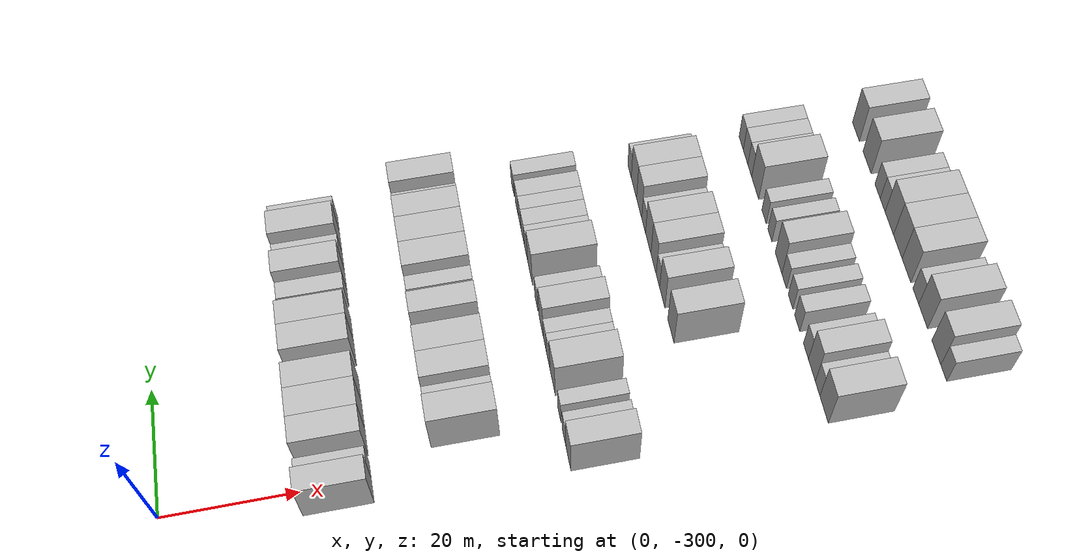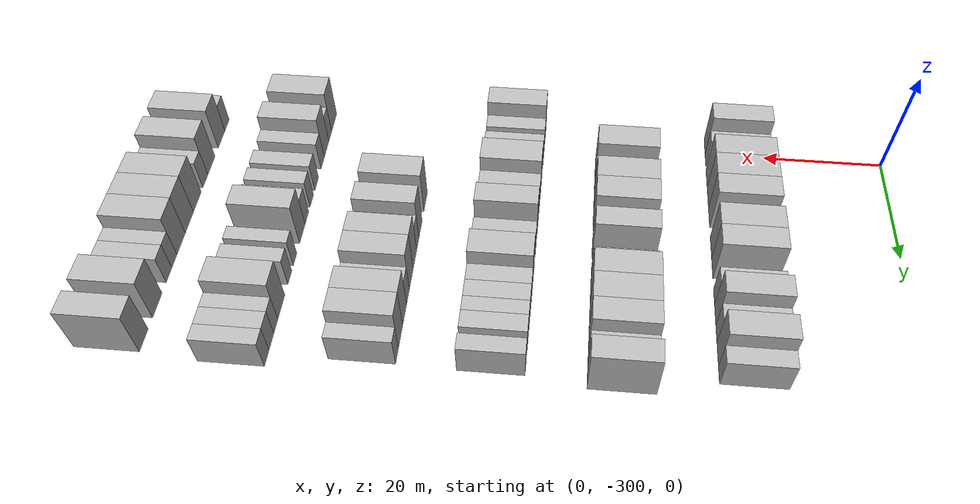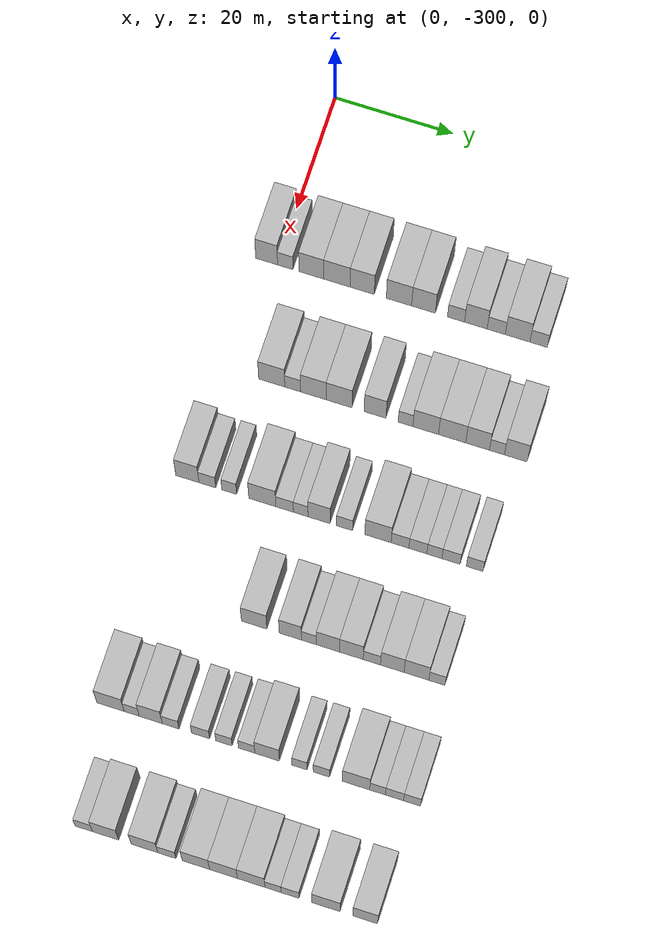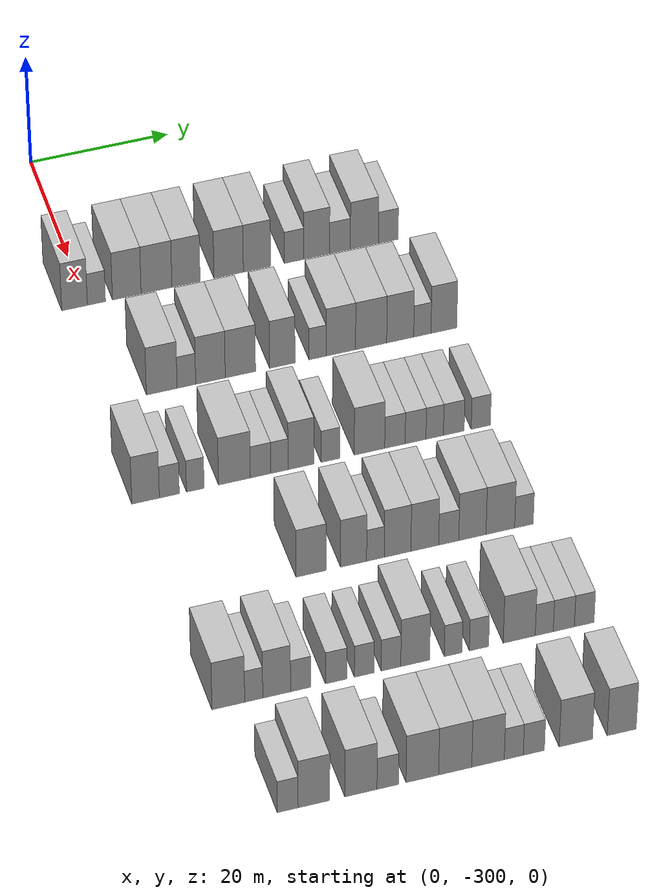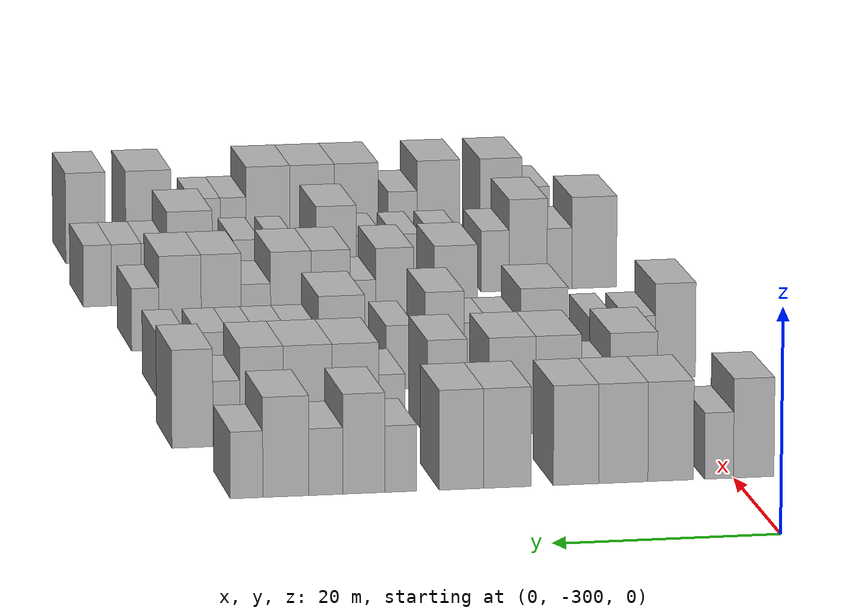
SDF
<sdf version="1.6">
 <world name="default">
  <model name="building_15">
   <static>1</static>
   <pose>25.0000 -301.7940 0 0.000000 0.000000 0.000000</pose>
   <link name="link">
    <pose>0 0 4.50 0 0 0</pose>
    <collision name="collision"><geometry><box><size>10.0000 3.6529 9.0000</size></box></geometry></collision>
    <visual name="visual">
     <cast_shadows>0</cast_shadows>
     <geometry><box><size>10.0000 3.6529 9.0000</size></box></geometry>
     <material>
      <script>
       <uri>model://HANNAS_wall/materials/scripts</uri>
       <uri>model://HANNAS_wall/materials/textures</uri>
       <name>vrc/HANNAS_wall</name>
      </script>
     </material>
    </visual>
   </link>
  </model>
  <model name="building_16">
   <static>1</static>
   <pose>25.0000 -298.6746 0 0.000000 0.000000 0.000000</pose>
   <link name="link">
    <pose>0 0 3.00 0 0 0</pose>
    <collision name="collision"><geometry><box><size>10.0000 2.5859 6.0000</size></box></geometry></collision>
    <visual name="visual">
     <cast_shadows>0</cast_shadows>
     <geometry><box><size>10.0000 2.5859 6.0000</size></box></geometry>
     <material>
      <script>
       <uri>model://HANNAS_wall/materials/scripts</uri>
       <uri>model://HANNAS_wall/materials/textures</uri>
       <name>vrc/HANNAS_wall</name>
      </script>
     </material>
    </visual>
   </link>
  </model>
  <model name="building_17">
   <static>1</static>
   <pose>25.0000 -294.3288 0 0.000000 0.000000 0.000000</pose>
   <link name="link">
    <pose>0 0 4.50 0 0 0</pose>
    <collision name="collision"><geometry><box><size>10.0000 4.1056 9.0000</size></box></geometry></collision>
    <visual name="visual">
     <cast_shadows>0</cast_shadows>
     <geometry><box><size>10.0000 4.1056 9.0000</size></box></geometry>
     <material>
      <script>
       <uri>model://HANNAS_wall/materials/scripts</uri>
       <uri>model://HANNAS_wall/materials/textures</uri>
       <name>vrc/HANNAS_wall</name>
      </script>
     </material>
    </visual>
   </link>
  </model>
  <model name="building_18">
   <static>1</static>
   <pose>25.0000 -290.0642 0 0.000000 0.000000 0.000000</pose>
   <link name="link">
    <pose>0 0 4.50 0 0 0</pose>
    <collision name="collision"><geometry><box><size>10.0000 4.4236 9.0000</size></box></geometry></collision>
    <visual name="visual">
     <cast_shadows>0</cast_shadows>
     <geometry><box><size>10.0000 4.4236 9.0000</size></box></geometry>
     <material>
      <script>
       <uri>model://HANNAS_wall/materials/scripts</uri>
       <uri>model://HANNAS_wall/materials/textures</uri>
       <name>vrc/HANNAS_wall</name>
      </script>
     </material>
    </visual>
   </link>
  </model>
  <model name="building_19">
   <static>1</static>
   <pose>25.0000 -285.8261 0 0.000000 0.000000 0.000000</pose>
   <link name="link">
    <pose>0 0 4.50 0 0 0</pose>
    <collision name="collision"><geometry><box><size>10.0000 4.0528 9.0000</size></box></geometry></collision>
    <visual name="visual">
     <cast_shadows>0</cast_shadows>
     <geometry><box><size>10.0000 4.0528 9.0000</size></box></geometry>
     <material>
      <script>
       <uri>model://HANNAS_wall/materials/scripts</uri>
       <uri>model://HANNAS_wall/materials/textures</uri>
       <name>vrc/HANNAS_wall</name>
      </script>
     </material>
    </visual>
   </link>
  </model>
  <model name="building_20">
   <static>1</static>
   <pose>25.0000 -279.6856 0 0.000000 0.000000 0.000000</pose>
   <link name="link">
    <pose>0 0 4.50 0 0 0</pose>
    <collision name="collision"><geometry><box><size>10.0000 4.2282 9.0000</size></box></geometry></collision>
    <visual name="visual">
     <cast_shadows>0</cast_shadows>
     <geometry><box><size>10.0000 4.2282 9.0000</size></box></geometry>
     <material>
      <script>
       <uri>model://HANNAS_wall/materials/scripts</uri>
       <uri>model://HANNAS_wall/materials/textures</uri>
       <name>vrc/HANNAS_wall</name>
      </script>
     </material>
    </visual>
   </link>
  </model>
  <model name="building_21">
   <static>1</static>
   <pose>25.0000 -275.5950 0 0.000000 0.000000 0.000000</pose>
   <link name="link">
    <pose>0 0 4.50 0 0 0</pose>
    <collision name="collision"><geometry><box><size>10.0000 3.9529 9.0000</size></box></geometry></collision>
    <visual name="visual">
     <cast_shadows>0</cast_shadows>
     <geometry><box><size>10.0000 3.9529 9.0000</size></box></geometry>
     <material>
      <script>
       <uri>model://HANNAS_wall/materials/scripts</uri>
       <uri>model://HANNAS_wall/materials/textures</uri>
       <name>vrc/HANNAS_wall</name>
      </script>
     </material>
    </visual>
   </link>
  </model>
  <model name="building_22">
   <static>1</static>
   <pose>25.0000 -270.2012 0 0.000000 0.000000 0.000000</pose>
   <link name="link">
    <pose>0 0 3.00 0 0 0</pose>
    <collision name="collision"><geometry><box><size>10.0000 2.8348 6.0000</size></box></geometry></collision>
    <visual name="visual">
     <cast_shadows>0</cast_shadows>
     <geometry><box><size>10.0000 2.8348 6.0000</size></box></geometry>
     <material>
      <script>
       <uri>model://HANNAS_wall/materials/scripts</uri>
       <uri>model://HANNAS_wall/materials/textures</uri>
       <name>vrc/HANNAS_wall</name>
      </script>
     </material>
    </visual>
   </link>
  </model>
  <model name="building_23">
   <static>1</static>
   <pose>25.0000 -266.9087 0 0.000000 0.000000 0.000000</pose>
   <link name="link">
    <pose>0 0 4.50 0 0 0</pose>
    <collision name="collision"><geometry><box><size>10.0000 3.7501 9.0000</size></box></geometry></collision>
    <visual name="visual">
     <cast_shadows>0</cast_shadows>
     <geometry><box><size>10.0000 3.7501 9.0000</size></box></geometry>
     <material>
      <script>
       <uri>model://HANNAS_wall/materials/scripts</uri>
       <uri>model://HANNAS_wall/materials/textures</uri>
       <name>vrc/HANNAS_wall</name>
      </script>
     </material>
    </visual>
   </link>
  </model>
  <model name="building_24">
   <static>1</static>
   <pose>25.0000 -263.5351 0 0.000000 0.000000 0.000000</pose>
   <link name="link">
    <pose>0 0 3.00 0 0 0</pose>
    <collision name="collision"><geometry><box><size>10.0000 2.9970 6.0000</size></box></geometry></collision>
    <visual name="visual">
     <cast_shadows>0</cast_shadows>
     <geometry><box><size>10.0000 2.9970 6.0000</size></box></geometry>
     <material>
      <script>
       <uri>model://HANNAS_wall/materials/scripts</uri>
       <uri>model://HANNAS_wall/materials/textures</uri>
       <name>vrc/HANNAS_wall</name>
      </script>
     </material>
    </visual>
   </link>
  </model>
  <model name="building_25">
   <static>1</static>
   <pose>25.0000 -259.9941 0 0.000000 0.000000 0.000000</pose>
   <link name="link">
    <pose>0 0 4.50 0 0 0</pose>
    <collision name="collision"><geometry><box><size>10.0000 4.0851 9.0000</size></box></geometry></collision>
    <visual name="visual">
     <cast_shadows>0</cast_shadows>
     <geometry><box><size>10.0000 4.0851 9.0000</size></box></geometry>
     <material>
      <script>
       <uri>model://HANNAS_wall/materials/scripts</uri>
       <uri>model://HANNAS_wall/materials/textures</uri>
       <name>vrc/HANNAS_wall</name>
      </script>
     </material>
    </visual>
   </link>
  </model>
  <model name="building_26">
   <static>1</static>
   <pose>25.0000 -256.5122 0 0.000000 0.000000 0.000000</pose>
   <link name="link">
    <pose>0 0 3.00 0 0 0</pose>
    <collision name="collision"><geometry><box><size>10.0000 2.8787 6.0000</size></box></geometry></collision>
    <visual name="visual">
     <cast_shadows>0</cast_shadows>
     <geometry><box><size>10.0000 2.8787 6.0000</size></box></geometry>
     <material>
      <script>
       <uri>model://HANNAS_wall/materials/scripts</uri>
       <uri>model://HANNAS_wall/materials/textures</uri>
       <name>vrc/HANNAS_wall</name>
      </script>
     </material>
    </visual>
   </link>
  </model>
  <model name="building_175">
   <static>1</static>
   <pose>44.0000 -294.6997 0 0.000000 0.000000 0.000000</pose>
   <link name="link">
    <pose>0 0 4.50 0 0 0</pose>
    <collision name="collision"><geometry><box><size>10.0000 4.3302 9.0000</size></box></geometry></collision>
    <visual name="visual">
     <cast_shadows>0</cast_shadows>
     <geometry><box><size>10.0000 4.3302 9.0000</size></box></geometry>
     <material>
      <script>
       <uri>model://HANNAS_wall/materials/scripts</uri>
       <uri>model://HANNAS_wall/materials/textures</uri>
       <name>vrc/HANNAS_wall</name>
      </script>
     </material>
    </visual>
   </link>
  </model>
  <model name="building_176">
   <static>1</static>
   <pose>44.0000 -291.2259 0 0.000000 0.000000 0.000000</pose>
   <link name="link">
    <pose>0 0 3.00 0 0 0</pose>
    <collision name="collision"><geometry><box><size>10.0000 2.6175 6.0000</size></box></geometry></collision>
    <visual name="visual">
     <cast_shadows>0</cast_shadows>
     <geometry><box><size>10.0000 2.6175 6.0000</size></box></geometry>
     <material>
      <script>
       <uri>model://HANNAS_wall/materials/scripts</uri>
       <uri>model://HANNAS_wall/materials/textures</uri>
       <name>vrc/HANNAS_wall</name>
      </script>
     </material>
    </visual>
   </link>
  </model>
  <model name="building_177">
   <static>1</static>
   <pose>44.0000 -287.8184 0 0.000000 0.000000 0.000000</pose>
   <link name="link">
    <pose>0 0 4.50 0 0 0</pose>
    <collision name="collision"><geometry><box><size>10.0000 4.1975 9.0000</size></box></geometry></collision>
    <visual name="visual">
     <cast_shadows>0</cast_shadows>
     <geometry><box><size>10.0000 4.1975 9.0000</size></box></geometry>
     <material>
      <script>
       <uri>model://HANNAS_wall/materials/scripts</uri>
       <uri>model://HANNAS_wall/materials/textures</uri>
       <name>vrc/HANNAS_wall</name>
      </script>
     </material>
    </visual>
   </link>
  </model>
  <model name="building_178">
   <static>1</static>
   <pose>44.0000 -283.5724 0 0.000000 0.000000 0.000000</pose>
   <link name="link">
    <pose>0 0 4.50 0 0 0</pose>
    <collision name="collision"><geometry><box><size>10.0000 4.2944 9.0000</size></box></geometry></collision>
    <visual name="visual">
     <cast_shadows>0</cast_shadows>
     <geometry><box><size>10.0000 4.2944 9.0000</size></box></geometry>
     <material>
      <script>
       <uri>model://HANNAS_wall/materials/scripts</uri>
       <uri>model://HANNAS_wall/materials/textures</uri>
       <name>vrc/HANNAS_wall</name>
      </script>
     </material>
    </visual>
   </link>
  </model>
  <model name="building_179">
   <static>1</static>
   <pose>44.0000 -277.6161 0 0.000000 0.000000 0.000000</pose>
   <link name="link">
    <pose>0 0 4.50 0 0 0</pose>
    <collision name="collision"><geometry><box><size>10.0000 3.6183 9.0000</size></box></geometry></collision>
    <visual name="visual">
     <cast_shadows>0</cast_shadows>
     <geometry><box><size>10.0000 3.6183 9.0000</size></box></geometry>
     <material>
      <script>
       <uri>model://HANNAS_wall/materials/scripts</uri>
       <uri>model://HANNAS_wall/materials/textures</uri>
       <name>vrc/HANNAS_wall</name>
      </script>
     </material>
    </visual>
   </link>
  </model>
  <model name="building_180">
   <static>1</static>
   <pose>44.0000 -272.5917 0 0.000000 0.000000 0.000000</pose>
   <link name="link">
    <pose>0 0 3.00 0 0 0</pose>
    <collision name="collision"><geometry><box><size>10.0000 2.4304 6.0000</size></box></geometry></collision>
    <visual name="visual">
     <cast_shadows>0</cast_shadows>
     <geometry><box><size>10.0000 2.4304 6.0000</size></box></geometry>
     <material>
      <script>
       <uri>model://HANNAS_wall/materials/scripts</uri>
       <uri>model://HANNAS_wall/materials/textures</uri>
       <name>vrc/HANNAS_wall</name>
      </script>
     </material>
    </visual>
   </link>
  </model>
  <model name="building_181">
   <static>1</static>
   <pose>44.0000 -269.2691 0 0.000000 0.000000 0.000000</pose>
   <link name="link">
    <pose>0 0 4.50 0 0 0</pose>
    <collision name="collision"><geometry><box><size>10.0000 4.2148 9.0000</size></box></geometry></collision>
    <visual name="visual">
     <cast_shadows>0</cast_shadows>
     <geometry><box><size>10.0000 4.2148 9.0000</size></box></geometry>
     <material>
      <script>
       <uri>model://HANNAS_wall/materials/scripts</uri>
       <uri>model://HANNAS_wall/materials/textures</uri>
       <name>vrc/HANNAS_wall</name>
      </script>
     </material>
    </visual>
   </link>
  </model>
  <model name="building_182">
   <static>1</static>
   <pose>44.0000 -264.9315 0 0.000000 0.000000 0.000000</pose>
   <link name="link">
    <pose>0 0 4.50 0 0 0</pose>
    <collision name="collision"><geometry><box><size>10.0000 4.4603 9.0000</size></box></geometry></collision>
    <visual name="visual">
     <cast_shadows>0</cast_shadows>
     <geometry><box><size>10.0000 4.4603 9.0000</size></box></geometry>
     <material>
      <script>
       <uri>model://HANNAS_wall/materials/scripts</uri>
       <uri>model://HANNAS_wall/materials/textures</uri>
       <name>vrc/HANNAS_wall</name>
      </script>
     </material>
    </visual>
   </link>
  </model>
  <model name="building_183">
   <static>1</static>
   <pose>44.0000 -260.7561 0 0.000000 0.000000 0.000000</pose>
   <link name="link">
    <pose>0 0 4.50 0 0 0</pose>
    <collision name="collision"><geometry><box><size>10.0000 3.8907 9.0000</size></box></geometry></collision>
    <visual name="visual">
     <cast_shadows>0</cast_shadows>
     <geometry><box><size>10.0000 3.8907 9.0000</size></box></geometry>
     <material>
      <script>
       <uri>model://HANNAS_wall/materials/scripts</uri>
       <uri>model://HANNAS_wall/materials/textures</uri>
       <name>vrc/HANNAS_wall</name>
      </script>
     </material>
    </visual>
   </link>
  </model>
  <model name="building_184">
   <static>1</static>
   <pose>44.0000 -257.5762 0 0.000000 0.000000 0.000000</pose>
   <link name="link">
    <pose>0 0 3.00 0 0 0</pose>
    <collision name="collision"><geometry><box><size>10.0000 2.4690 6.0000</size></box></geometry></collision>
    <visual name="visual">
     <cast_shadows>0</cast_shadows>
     <geometry><box><size>10.0000 2.4690 6.0000</size></box></geometry>
     <material>
      <script>
       <uri>model://HANNAS_wall/materials/scripts</uri>
       <uri>model://HANNAS_wall/materials/textures</uri>
       <name>vrc/HANNAS_wall</name>
      </script>
     </material>
    </visual>
   </link>
  </model>
  <model name="building_185">
   <static>1</static>
   <pose>44.0000 -254.4840 0 0.000000 0.000000 0.000000</pose>
   <link name="link">
    <pose>0 0 4.50 0 0 0</pose>
    <collision name="collision"><geometry><box><size>10.0000 3.7155 9.0000</size></box></geometry></collision>
    <visual name="visual">
     <cast_shadows>0</cast_shadows>
     <geometry><box><size>10.0000 3.7155 9.0000</size></box></geometry>
     <material>
      <script>
       <uri>model://HANNAS_wall/materials/scripts</uri>
       <uri>model://HANNAS_wall/materials/textures</uri>
       <name>vrc/HANNAS_wall</name>
      </script>
     </material>
    </visual>
   </link>
  </model>
  <model name="building_345">
   <static>1</static>
   <pose>63.0000 -302.3345 0 0.000000 0.000000 0.000000</pose>
   <link name="link">
    <pose>0 0 4.50 0 0 0</pose>
    <collision name="collision"><geometry><box><size>10.0000 3.8072 9.0000</size></box></geometry></collision>
    <visual name="visual">
     <cast_shadows>0</cast_shadows>
     <geometry><box><size>10.0000 3.8072 9.0000</size></box></geometry>
     <material>
      <script>
       <uri>model://HANNAS_wall/materials/scripts</uri>
       <uri>model://HANNAS_wall/materials/textures</uri>
       <name>vrc/HANNAS_wall</name>
      </script>
     </material>
    </visual>
   </link>
  </model>
  <model name="building_346">
   <static>1</static>
   <pose>63.0000 -299.0459 0 0.000000 0.000000 0.000000</pose>
   <link name="link">
    <pose>0 0 3.00 0 0 0</pose>
    <collision name="collision"><geometry><box><size>10.0000 2.7700 6.0000</size></box></geometry></collision>
    <visual name="visual">
     <cast_shadows>0</cast_shadows>
     <geometry><box><size>10.0000 2.7700 6.0000</size></box></geometry>
     <material>
      <script>
       <uri>model://HANNAS_wall/materials/scripts</uri>
       <uri>model://HANNAS_wall/materials/textures</uri>
       <name>vrc/HANNAS_wall</name>
      </script>
     </material>
    </visual>
   </link>
  </model>
  <model name="building_347">
   <static>1</static>
   <pose>63.0000 -295.4398 0 0.000000 0.000000 0.000000</pose>
   <link name="link">
    <pose>0 0 3.00 0 0 0</pose>
    <collision name="collision"><geometry><box><size>10.0000 2.4423 6.0000</size></box></geometry></collision>
    <visual name="visual">
     <cast_shadows>0</cast_shadows>
     <geometry><box><size>10.0000 2.4423 6.0000</size></box></geometry>
     <material>
      <script>
       <uri>model://HANNAS_wall/materials/scripts</uri>
       <uri>model://HANNAS_wall/materials/textures</uri>
       <name>vrc/HANNAS_wall</name>
      </script>
     </material>
    </visual>
   </link>
  </model>
  <model name="building_348">
   <static>1</static>
   <pose>63.0000 -290.0000 0 0.000000 0.000000 0.000000</pose>
   <link name="link">
    <pose>0 0 4.50 0 0 0</pose>
    <collision name="collision"><geometry><box><size>10.0000 4.4372 9.0000</size></box></geometry></collision>
    <visual name="visual">
     <cast_shadows>0</cast_shadows>
     <geometry><box><size>10.0000 4.4372 9.0000</size></box></geometry>
     <material>
      <script>
       <uri>model://HANNAS_wall/materials/scripts</uri>
       <uri>model://HANNAS_wall/materials/textures</uri>
       <name>vrc/HANNAS_wall</name>
      </script>
     </material>
    </visual>
   </link>
  </model>
  <model name="building_349">
   <static>1</static>
   <pose>63.0000 -286.3480 0 0.000000 0.000000 0.000000</pose>
   <link name="link">
    <pose>0 0 3.00 0 0 0</pose>
    <collision name="collision"><geometry><box><size>10.0000 2.8669 6.0000</size></box></geometry></collision>
    <visual name="visual">
     <cast_shadows>0</cast_shadows>
     <geometry><box><size>10.0000 2.8669 6.0000</size></box></geometry>
     <material>
      <script>
       <uri>model://HANNAS_wall/materials/scripts</uri>
       <uri>model://HANNAS_wall/materials/textures</uri>
       <name>vrc/HANNAS_wall</name>
      </script>
     </material>
    </visual>
   </link>
  </model>
  <model name="building_350">
   <static>1</static>
   <pose>63.0000 -283.7135 0 0.000000 0.000000 0.000000</pose>
   <link name="link">
    <pose>0 0 3.00 0 0 0</pose>
    <collision name="collision"><geometry><box><size>10.0000 2.4020 6.0000</size></box></geometry></collision>
    <visual name="visual">
     <cast_shadows>0</cast_shadows>
     <geometry><box><size>10.0000 2.4020 6.0000</size></box></geometry>
     <material>
      <script>
       <uri>model://HANNAS_wall/materials/scripts</uri>
       <uri>model://HANNAS_wall/materials/textures</uri>
       <name>vrc/HANNAS_wall</name>
      </script>
     </material>
    </visual>
   </link>
  </model>
  <model name="building_351">
   <static>1</static>
   <pose>63.0000 -280.6971 0 0.000000 0.000000 0.000000</pose>
   <link name="link">
    <pose>0 0 4.50 0 0 0</pose>
    <collision name="collision"><geometry><box><size>10.0000 3.6308 9.0000</size></box></geometry></collision>
    <visual name="visual">
     <cast_shadows>0</cast_shadows>
     <geometry><box><size>10.0000 3.6308 9.0000</size></box></geometry>
     <material>
      <script>
       <uri>model://HANNAS_wall/materials/scripts</uri>
       <uri>model://HANNAS_wall/materials/textures</uri>
       <name>vrc/HANNAS_wall</name>
      </script>
     </material>
    </visual>
   </link>
  </model>
  <model name="building_352">
   <static>1</static>
   <pose>63.0000 -276.5550 0 0.000000 0.000000 0.000000</pose>
   <link name="link">
    <pose>0 0 3.00 0 0 0</pose>
    <collision name="collision"><geometry><box><size>10.0000 2.6535 6.0000</size></box></geometry></collision>
    <visual name="visual">
     <cast_shadows>0</cast_shadows>
     <geometry><box><size>10.0000 2.6535 6.0000</size></box></geometry>
     <material>
      <script>
       <uri>model://HANNAS_wall/materials/scripts</uri>
       <uri>model://HANNAS_wall/materials/textures</uri>
       <name>vrc/HANNAS_wall</name>
      </script>
     </material>
    </visual>
   </link>
  </model>
  <model name="building_353">
   <static>1</static>
   <pose>63.0000 -271.0815 0 0.000000 0.000000 0.000000</pose>
   <link name="link">
    <pose>0 0 4.50 0 0 0</pose>
    <collision name="collision"><geometry><box><size>10.0000 4.2936 9.0000</size></box></geometry></collision>
    <visual name="visual">
     <cast_shadows>0</cast_shadows>
     <geometry><box><size>10.0000 4.2936 9.0000</size></box></geometry>
     <material>
      <script>
       <uri>model://HANNAS_wall/materials/scripts</uri>
       <uri>model://HANNAS_wall/materials/textures</uri>
       <name>vrc/HANNAS_wall</name>
      </script>
     </material>
    </visual>
   </link>
  </model>
  <model name="building_354">
   <static>1</static>
   <pose>63.0000 -267.4930 0 0.000000 0.000000 0.000000</pose>
   <link name="link">
    <pose>0 0 3.00 0 0 0</pose>
    <collision name="collision"><geometry><box><size>10.0000 2.8834 6.0000</size></box></geometry></collision>
    <visual name="visual">
     <cast_shadows>0</cast_shadows>
     <geometry><box><size>10.0000 2.8834 6.0000</size></box></geometry>
     <material>
      <script>
       <uri>model://HANNAS_wall/materials/scripts</uri>
       <uri>model://HANNAS_wall/materials/textures</uri>
       <name>vrc/HANNAS_wall</name>
      </script>
     </material>
    </visual>
   </link>
  </model>
  <model name="building_355">
   <static>1</static>
   <pose>63.0000 -264.5808 0 0.000000 0.000000 0.000000</pose>
   <link name="link">
    <pose>0 0 3.00 0 0 0</pose>
    <collision name="collision"><geometry><box><size>10.0000 2.9409 6.0000</size></box></geometry></collision>
    <visual name="visual">
     <cast_shadows>0</cast_shadows>
     <geometry><box><size>10.0000 2.9409 6.0000</size></box></geometry>
     <material>
      <script>
       <uri>model://HANNAS_wall/materials/scripts</uri>
       <uri>model://HANNAS_wall/materials/textures</uri>
       <name>vrc/HANNAS_wall</name>
      </script>
     </material>
    </visual>
   </link>
  </model>
  <model name="building_356">
   <static>1</static>
   <pose>63.0000 -261.8820 0 0.000000 0.000000 0.000000</pose>
   <link name="link">
    <pose>0 0 3.00 0 0 0</pose>
    <collision name="collision"><geometry><box><size>10.0000 2.4566 6.0000</size></box></geometry></collision>
    <visual name="visual">
     <cast_shadows>0</cast_shadows>
     <geometry><box><size>10.0000 2.4566 6.0000</size></box></geometry>
     <material>
      <script>
       <uri>model://HANNAS_wall/materials/scripts</uri>
       <uri>model://HANNAS_wall/materials/textures</uri>
       <name>vrc/HANNAS_wall</name>
      </script>
     </material>
    </visual>
   </link>
  </model>
  <model name="building_357">
   <static>1</static>
   <pose>63.0000 -259.1807 0 0.000000 0.000000 0.000000</pose>
   <link name="link">
    <pose>0 0 3.00 0 0 0</pose>
    <collision name="collision"><geometry><box><size>10.0000 2.9461 6.0000</size></box></geometry></collision>
    <visual name="visual">
     <cast_shadows>0</cast_shadows>
     <geometry><box><size>10.0000 2.9461 6.0000</size></box></geometry>
     <material>
      <script>
       <uri>model://HANNAS_wall/materials/scripts</uri>
       <uri>model://HANNAS_wall/materials/textures</uri>
       <name>vrc/HANNAS_wall</name>
      </script>
     </material>
    </visual>
   </link>
  </model>
  <model name="building_358">
   <static>1</static>
   <pose>63.0000 -255.3499 0 0.000000 0.000000 0.000000</pose>
   <link name="link">
    <pose>0 0 3.00 0 0 0</pose>
    <collision name="collision"><geometry><box><size>10.0000 2.7155 6.0000</size></box></geometry></collision>
    <visual name="visual">
     <cast_shadows>0</cast_shadows>
     <geometry><box><size>10.0000 2.7155 6.0000</size></box></geometry>
     <material>
      <script>
       <uri>model://HANNAS_wall/materials/scripts</uri>
       <uri>model://HANNAS_wall/materials/textures</uri>
       <name>vrc/HANNAS_wall</name>
      </script>
     </material>
    </visual>
   </link>
  </model>
  <model name="building_533">
   <static>1</static>
   <pose>82.0000 -285.0635 0 0.000000 0.000000 0.000000</pose>
   <link name="link">
    <pose>0 0 4.50 0 0 0</pose>
    <collision name="collision"><geometry><box><size>10.0000 4.1279 9.0000</size></box></geometry></collision>
    <visual name="visual">
     <cast_shadows>0</cast_shadows>
     <geometry><box><size>10.0000 4.1279 9.0000</size></box></geometry>
     <material>
      <script>
       <uri>model://HANNAS_wall/materials/scripts</uri>
       <uri>model://HANNAS_wall/materials/textures</uri>
       <name>vrc/HANNAS_wall</name>
      </script>
     </material>
    </visual>
   </link>
  </model>
  <model name="building_534">
   <static>1</static>
   <pose>82.0000 -279.1985 0 0.000000 0.000000 0.000000</pose>
   <link name="link">
    <pose>0 0 4.50 0 0 0</pose>
    <collision name="collision"><geometry><box><size>10.0000 3.6021 9.0000</size></box></geometry></collision>
    <visual name="visual">
     <cast_shadows>0</cast_shadows>
     <geometry><box><size>10.0000 3.6021 9.0000</size></box></geometry>
     <material>
      <script>
       <uri>model://HANNAS_wall/materials/scripts</uri>
       <uri>model://HANNAS_wall/materials/textures</uri>
       <name>vrc/HANNAS_wall</name>
      </script>
     </material>
    </visual>
   </link>
  </model>
  <model name="building_535">
   <static>1</static>
   <pose>82.0000 -276.1820 0 0.000000 0.000000 0.000000</pose>
   <link name="link">
    <pose>0 0 3.00 0 0 0</pose>
    <collision name="collision"><geometry><box><size>10.0000 2.4308 6.0000</size></box></geometry></collision>
    <visual name="visual">
     <cast_shadows>0</cast_shadows>
     <geometry><box><size>10.0000 2.4308 6.0000</size></box></geometry>
     <material>
      <script>
       <uri>model://HANNAS_wall/materials/scripts</uri>
       <uri>model://HANNAS_wall/materials/textures</uri>
       <name>vrc/HANNAS_wall</name>
      </script>
     </material>
    </visual>
   </link>
  </model>
  <model name="building_536">
   <static>1</static>
   <pose>82.0000 -273.1202 0 0.000000 0.000000 0.000000</pose>
   <link name="link">
    <pose>0 0 4.50 0 0 0</pose>
    <collision name="collision"><geometry><box><size>10.0000 3.6928 9.0000</size></box></geometry></collision>
    <visual name="visual">
     <cast_shadows>0</cast_shadows>
     <geometry><box><size>10.0000 3.6928 9.0000</size></box></geometry>
     <material>
      <script>
       <uri>model://HANNAS_wall/materials/scripts</uri>
       <uri>model://HANNAS_wall/materials/textures</uri>
       <name>vrc/HANNAS_wall</name>
      </script>
     </material>
    </visual>
   </link>
  </model>
  <model name="building_537">
   <static>1</static>
   <pose>82.0000 -269.3476 0 0.000000 0.000000 0.000000</pose>
   <link name="link">
    <pose>0 0 4.50 0 0 0</pose>
    <collision name="collision"><geometry><box><size>10.0000 3.8524 9.0000</size></box></geometry></collision>
    <visual name="visual">
     <cast_shadows>0</cast_shadows>
     <geometry><box><size>10.0000 3.8524 9.0000</size></box></geometry>
     <material>
      <script>
       <uri>model://HANNAS_wall/materials/scripts</uri>
       <uri>model://HANNAS_wall/materials/textures</uri>
       <name>vrc/HANNAS_wall</name>
      </script>
     </material>
    </visual>
   </link>
  </model>
  <model name="building_538">
   <static>1</static>
   <pose>82.0000 -266.0254 0 0.000000 0.000000 0.000000</pose>
   <link name="link">
    <pose>0 0 3.00 0 0 0</pose>
    <collision name="collision"><geometry><box><size>10.0000 2.7921 6.0000</size></box></geometry></collision>
    <visual name="visual">
     <cast_shadows>0</cast_shadows>
     <geometry><box><size>10.0000 2.7921 6.0000</size></box></geometry>
     <material>
      <script>
       <uri>model://HANNAS_wall/materials/scripts</uri>
       <uri>model://HANNAS_wall/materials/textures</uri>
       <name>vrc/HANNAS_wall</name>
      </script>
     </material>
    </visual>
   </link>
  </model>
  <model name="building_539">
   <static>1</static>
   <pose>82.0000 -262.7329 0 0.000000 0.000000 0.000000</pose>
   <link name="link">
    <pose>0 0 4.50 0 0 0</pose>
    <collision name="collision"><geometry><box><size>10.0000 3.7928 9.0000</size></box></geometry></collision>
    <visual name="visual">
     <cast_shadows>0</cast_shadows>
     <geometry><box><size>10.0000 3.7928 9.0000</size></box></geometry>
     <material>
      <script>
       <uri>model://HANNAS_wall/materials/scripts</uri>
       <uri>model://HANNAS_wall/materials/textures</uri>
       <name>vrc/HANNAS_wall</name>
      </script>
     </material>
    </visual>
   </link>
  </model>
  <model name="building_540">
   <static>1</static>
   <pose>82.0000 -258.8356 0 0.000000 0.000000 0.000000</pose>
   <link name="link">
    <pose>0 0 4.50 0 0 0</pose>
    <collision name="collision"><geometry><box><size>10.0000 4.0018 9.0000</size></box></geometry></collision>
    <visual name="visual">
     <cast_shadows>0</cast_shadows>
     <geometry><box><size>10.0000 4.0018 9.0000</size></box></geometry>
     <material>
      <script>
       <uri>model://HANNAS_wall/materials/scripts</uri>
       <uri>model://HANNAS_wall/materials/textures</uri>
       <name>vrc/HANNAS_wall</name>
      </script>
     </material>
    </visual>
   </link>
  </model>
  <model name="building_541">
   <static>1</static>
   <pose>82.0000 -255.5364 0 0.000000 0.000000 0.000000</pose>
   <link name="link">
    <pose>0 0 3.00 0 0 0</pose>
    <collision name="collision"><geometry><box><size>10.0000 2.5967 6.0000</size></box></geometry></collision>
    <visual name="visual">
     <cast_shadows>0</cast_shadows>
     <geometry><box><size>10.0000 2.5967 6.0000</size></box></geometry>
     <material>
      <script>
       <uri>model://HANNAS_wall/materials/scripts</uri>
       <uri>model://HANNAS_wall/materials/textures</uri>
       <name>vrc/HANNAS_wall</name>
      </script>
     </material>
    </visual>
   </link>
  </model>
  <model name="building_713">
   <static>1</static>
   <pose>101.0000 -301.9628 0 0.000000 0.000000 0.000000</pose>
   <link name="link">
    <pose>0 0 4.50 0 0 0</pose>
    <collision name="collision"><geometry><box><size>10.0000 4.3993 9.0000</size></box></geometry></collision>
    <visual name="visual">
     <cast_shadows>0</cast_shadows>
     <geometry><box><size>10.0000 4.3993 9.0000</size></box></geometry>
     <material>
      <script>
       <uri>model://HANNAS_wall/materials/scripts</uri>
       <uri>model://HANNAS_wall/materials/textures</uri>
       <name>vrc/HANNAS_wall</name>
      </script>
     </material>
    </visual>
   </link>
  </model>
  <model name="building_714">
   <static>1</static>
   <pose>101.0000 -298.5491 0 0.000000 0.000000 0.000000</pose>
   <link name="link">
    <pose>0 0 3.00 0 0 0</pose>
    <collision name="collision"><geometry><box><size>10.0000 2.4281 6.0000</size></box></geometry></collision>
    <visual name="visual">
     <cast_shadows>0</cast_shadows>
     <geometry><box><size>10.0000 2.4281 6.0000</size></box></geometry>
     <material>
      <script>
       <uri>model://HANNAS_wall/materials/scripts</uri>
       <uri>model://HANNAS_wall/materials/textures</uri>
       <name>vrc/HANNAS_wall</name>
      </script>
     </material>
    </visual>
   </link>
  </model>
  <model name="building_715">
   <static>1</static>
   <pose>101.0000 -295.4631 0 0.000000 0.000000 0.000000</pose>
   <link name="link">
    <pose>0 0 4.50 0 0 0</pose>
    <collision name="collision"><geometry><box><size>10.0000 3.7438 9.0000</size></box></geometry></collision>
    <visual name="visual">
     <cast_shadows>0</cast_shadows>
     <geometry><box><size>10.0000 3.7438 9.0000</size></box></geometry>
     <material>
      <script>
       <uri>model://HANNAS_wall/materials/scripts</uri>
       <uri>model://HANNAS_wall/materials/textures</uri>
       <name>vrc/HANNAS_wall</name>
      </script>
     </material>
    </visual>
   </link>
  </model>
  <model name="building_716">
   <static>1</static>
   <pose>101.0000 -292.2394 0 0.000000 0.000000 0.000000</pose>
   <link name="link">
    <pose>0 0 3.00 0 0 0</pose>
    <collision name="collision"><geometry><box><size>10.0000 2.7036 6.0000</size></box></geometry></collision>
    <visual name="visual">
     <cast_shadows>0</cast_shadows>
     <geometry><box><size>10.0000 2.7036 6.0000</size></box></geometry>
     <material>
      <script>
       <uri>model://HANNAS_wall/materials/scripts</uri>
       <uri>model://HANNAS_wall/materials/textures</uri>
       <name>vrc/HANNAS_wall</name>
      </script>
     </material>
    </visual>
   </link>
  </model>
  <model name="building_717">
   <static>1</static>
   <pose>101.0000 -287.4258 0 0.000000 0.000000 0.000000</pose>
   <link name="link">
    <pose>0 0 3.00 0 0 0</pose>
    <collision name="collision"><geometry><box><size>10.0000 2.9236 6.0000</size></box></geometry></collision>
    <visual name="visual">
     <cast_shadows>0</cast_shadows>
     <geometry><box><size>10.0000 2.9236 6.0000</size></box></geometry>
     <material>
      <script>
       <uri>model://HANNAS_wall/materials/scripts</uri>
       <uri>model://HANNAS_wall/materials/textures</uri>
       <name>vrc/HANNAS_wall</name>
      </script>
     </material>
    </visual>
   </link>
  </model>
  <model name="building_718">
   <static>1</static>
   <pose>101.0000 -283.6432 0 0.000000 0.000000 0.000000</pose>
   <link name="link">
    <pose>0 0 3.00 0 0 0</pose>
    <collision name="collision"><geometry><box><size>10.0000 2.6416 6.0000</size></box></geometry></collision>
    <visual name="visual">
     <cast_shadows>0</cast_shadows>
     <geometry><box><size>10.0000 2.6416 6.0000</size></box></geometry>
     <material>
      <script>
       <uri>model://HANNAS_wall/materials/scripts</uri>
       <uri>model://HANNAS_wall/materials/textures</uri>
       <name>vrc/HANNAS_wall</name>
      </script>
     </material>
    </visual>
   </link>
  </model>
  <model name="building_719">
   <static>1</static>
   <pose>101.0000 -279.9968 0 0.000000 0.000000 0.000000</pose>
   <link name="link">
    <pose>0 0 3.00 0 0 0</pose>
    <collision name="collision"><geometry><box><size>10.0000 2.6511 6.0000</size></box></geometry></collision>
    <visual name="visual">
     <cast_shadows>0</cast_shadows>
     <geometry><box><size>10.0000 2.6511 6.0000</size></box></geometry>
     <material>
      <script>
       <uri>model://HANNAS_wall/materials/scripts</uri>
       <uri>model://HANNAS_wall/materials/textures</uri>
       <name>vrc/HANNAS_wall</name>
      </script>
     </material>
    </visual>
   </link>
  </model>
  <model name="building_720">
   <static>1</static>
   <pose>101.0000 -276.7064 0 0.000000 0.000000 0.000000</pose>
   <link name="link">
    <pose>0 0 4.50 0 0 0</pose>
    <collision name="collision"><geometry><box><size>10.0000 3.9298 9.0000</size></box></geometry></collision>
    <visual name="visual">
     <cast_shadows>0</cast_shadows>
     <geometry><box><size>10.0000 3.9298 9.0000</size></box></geometry>
     <material>
      <script>
       <uri>model://HANNAS_wall/materials/scripts</uri>
       <uri>model://HANNAS_wall/materials/textures</uri>
       <name>vrc/HANNAS_wall</name>
      </script>
     </material>
    </visual>
   </link>
  </model>
  <model name="building_721">
   <static>1</static>
   <pose>101.0000 -271.5287 0 0.000000 0.000000 0.000000</pose>
   <link name="link">
    <pose>0 0 3.00 0 0 0</pose>
    <collision name="collision"><geometry><box><size>10.0000 2.4256 6.0000</size></box></geometry></collision>
    <visual name="visual">
     <cast_shadows>0</cast_shadows>
     <geometry><box><size>10.0000 2.4256 6.0000</size></box></geometry>
     <material>
      <script>
       <uri>model://HANNAS_wall/materials/scripts</uri>
       <uri>model://HANNAS_wall/materials/textures</uri>
       <name>vrc/HANNAS_wall</name>
      </script>
     </material>
    </visual>
   </link>
  </model>
  <model name="building_722">
   <static>1</static>
   <pose>101.0000 -268.0012 0 0.000000 0.000000 0.000000</pose>
   <link name="link">
    <pose>0 0 3.00 0 0 0</pose>
    <collision name="collision"><geometry><box><size>10.0000 2.6292 6.0000</size></box></geometry></collision>
    <visual name="visual">
     <cast_shadows>0</cast_shadows>
     <geometry><box><size>10.0000 2.6292 6.0000</size></box></geometry>
     <material>
      <script>
       <uri>model://HANNAS_wall/materials/scripts</uri>
       <uri>model://HANNAS_wall/materials/textures</uri>
       <name>vrc/HANNAS_wall</name>
      </script>
     </material>
    </visual>
   </link>
  </model>
  <model name="building_723">
   <static>1</static>
   <pose>101.0000 -262.4924 0 0.000000 0.000000 0.000000</pose>
   <link name="link">
    <pose>0 0 4.50 0 0 0</pose>
    <collision name="collision"><geometry><box><size>10.0000 4.3884 9.0000</size></box></geometry></collision>
    <visual name="visual">
     <cast_shadows>0</cast_shadows>
     <geometry><box><size>10.0000 4.3884 9.0000</size></box></geometry>
     <material>
      <script>
       <uri>model://HANNAS_wall/materials/scripts</uri>
       <uri>model://HANNAS_wall/materials/textures</uri>
       <name>vrc/HANNAS_wall</name>
      </script>
     </material>
    </visual>
   </link>
  </model>
  <model name="building_724">
   <static>1</static>
   <pose>101.0000 -259.0566 0 0.000000 0.000000 0.000000</pose>
   <link name="link">
    <pose>0 0 3.00 0 0 0</pose>
    <collision name="collision"><geometry><box><size>10.0000 2.4832 6.0000</size></box></geometry></collision>
    <visual name="visual">
     <cast_shadows>0</cast_shadows>
     <geometry><box><size>10.0000 2.4832 6.0000</size></box></geometry>
     <material>
      <script>
       <uri>model://HANNAS_wall/materials/scripts</uri>
       <uri>model://HANNAS_wall/materials/textures</uri>
       <name>vrc/HANNAS_wall</name>
      </script>
     </material>
    </visual>
   </link>
  </model>
  <model name="building_725">
   <static>1</static>
   <pose>101.0000 -256.3602 0 0.000000 0.000000 0.000000</pose>
   <link name="link">
    <pose>0 0 3.00 0 0 0</pose>
    <collision name="collision"><geometry><box><size>10.0000 2.9096 6.0000</size></box></geometry></collision>
    <visual name="visual">
     <cast_shadows>0</cast_shadows>
     <geometry><box><size>10.0000 2.9096 6.0000</size></box></geometry>
     <material>
      <script>
       <uri>model://HANNAS_wall/materials/scripts</uri>
       <uri>model://HANNAS_wall/materials/textures</uri>
       <name>vrc/HANNAS_wall</name>
      </script>
     </material>
    </visual>
   </link>
  </model>
  <model name="building_726">
   <static>1</static>
   <pose>101.0000 -253.5560 0 0.000000 0.000000 0.000000</pose>
   <link name="link">
    <pose>0 0 3.00 0 0 0</pose>
    <collision name="collision"><geometry><box><size>10.0000 2.6988 6.0000</size></box></geometry></collision>
    <visual name="visual">
     <cast_shadows>0</cast_shadows>
     <geometry><box><size>10.0000 2.6988 6.0000</size></box></geometry>
     <material>
      <script>
       <uri>model://HANNAS_wall/materials/scripts</uri>
       <uri>model://HANNAS_wall/materials/textures</uri>
       <name>vrc/HANNAS_wall</name>
      </script>
     </material>
    </visual>
   </link>
  </model>
  <model name="building_896">
   <static>1</static>
   <pose>120.0000 -299.6784 0 0.000000 0.000000 0.000000</pose>
   <link name="link">
    <pose>0 0 3.00 0 0 0</pose>
    <collision name="collision"><geometry><box><size>10.0000 2.7614 6.0000</size></box></geometry></collision>
    <visual name="visual">
     <cast_shadows>0</cast_shadows>
     <geometry><box><size>10.0000 2.7614 6.0000</size></box></geometry>
     <material>
      <script>
       <uri>model://HANNAS_wall/materials/scripts</uri>
       <uri>model://HANNAS_wall/materials/textures</uri>
       <name>vrc/HANNAS_wall</name>
      </script>
     </material>
    </visual>
   </link>
  </model>
  <model name="building_897">
   <static>1</static>
   <pose>120.0000 -296.2028 0 0.000000 0.000000 0.000000</pose>
   <link name="link">
    <pose>0 0 4.50 0 0 0</pose>
    <collision name="collision"><geometry><box><size>10.0000 4.1899 9.0000</size></box></geometry></collision>
    <visual name="visual">
     <cast_shadows>0</cast_shadows>
     <geometry><box><size>10.0000 4.1899 9.0000</size></box></geometry>
     <material>
      <script>
       <uri>model://HANNAS_wall/materials/scripts</uri>
       <uri>model://HANNAS_wall/materials/textures</uri>
       <name>vrc/HANNAS_wall</name>
      </script>
     </material>
    </visual>
   </link>
  </model>
  <model name="building_898">
   <static>1</static>
   <pose>120.0000 -289.9722 0 0.000000 0.000000 0.000000</pose>
   <link name="link">
    <pose>0 0 4.50 0 0 0</pose>
    <collision name="collision"><geometry><box><size>10.0000 4.2713 9.0000</size></box></geometry></collision>
    <visual name="visual">
     <cast_shadows>0</cast_shadows>
     <geometry><box><size>10.0000 4.2713 9.0000</size></box></geometry>
     <material>
      <script>
       <uri>model://HANNAS_wall/materials/scripts</uri>
       <uri>model://HANNAS_wall/materials/textures</uri>
       <name>vrc/HANNAS_wall</name>
      </script>
     </material>
    </visual>
   </link>
  </model>
  <model name="building_899">
   <static>1</static>
   <pose>120.0000 -286.3986 0 0.000000 0.000000 0.000000</pose>
   <link name="link">
    <pose>0 0 3.00 0 0 0</pose>
    <collision name="collision"><geometry><box><size>10.0000 2.8758 6.0000</size></box></geometry></collision>
    <visual name="visual">
     <cast_shadows>0</cast_shadows>
     <geometry><box><size>10.0000 2.8758 6.0000</size></box></geometry>
     <material>
      <script>
       <uri>model://HANNAS_wall/materials/scripts</uri>
       <uri>model://HANNAS_wall/materials/textures</uri>
       <name>vrc/HANNAS_wall</name>
      </script>
     </material>
    </visual>
   </link>
  </model>
  <model name="building_900">
   <static>1</static>
   <pose>120.0000 -281.7883 0 0.000000 0.000000 0.000000</pose>
   <link name="link">
    <pose>0 0 4.50 0 0 0</pose>
    <collision name="collision"><geometry><box><size>10.0000 4.3447 9.0000</size></box></geometry></collision>
    <visual name="visual">
     <cast_shadows>0</cast_shadows>
     <geometry><box><size>10.0000 4.3447 9.0000</size></box></geometry>
     <material>
      <script>
       <uri>model://HANNAS_wall/materials/scripts</uri>
       <uri>model://HANNAS_wall/materials/textures</uri>
       <name>vrc/HANNAS_wall</name>
      </script>
     </material>
    </visual>
   </link>
  </model>
  <model name="building_901">
   <static>1</static>
   <pose>120.0000 -277.3988 0 0.000000 0.000000 0.000000</pose>
   <link name="link">
    <pose>0 0 4.50 0 0 0</pose>
    <collision name="collision"><geometry><box><size>10.0000 4.4344 9.0000</size></box></geometry></collision>
    <visual name="visual">
     <cast_shadows>0</cast_shadows>
     <geometry><box><size>10.0000 4.4344 9.0000</size></box></geometry>
     <material>
      <script>
       <uri>model://HANNAS_wall/materials/scripts</uri>
       <uri>model://HANNAS_wall/materials/textures</uri>
       <name>vrc/HANNAS_wall</name>
      </script>
     </material>
    </visual>
   </link>
  </model>
  <model name="building_902">
   <static>1</static>
   <pose>120.0000 -273.0000 0 0.000000 0.000000 0.000000</pose>
   <link name="link">
    <pose>0 0 4.50 0 0 0</pose>
    <collision name="collision"><geometry><box><size>10.0000 4.3632 9.0000</size></box></geometry></collision>
    <visual name="visual">
     <cast_shadows>0</cast_shadows>
     <geometry><box><size>10.0000 4.3632 9.0000</size></box></geometry>
     <material>
      <script>
       <uri>model://HANNAS_wall/materials/scripts</uri>
       <uri>model://HANNAS_wall/materials/textures</uri>
       <name>vrc/HANNAS_wall</name>
      </script>
     </material>
    </visual>
   </link>
  </model>
  <model name="building_903">
   <static>1</static>
   <pose>120.0000 -269.5377 0 0.000000 0.000000 0.000000</pose>
   <link name="link">
    <pose>0 0 3.00 0 0 0</pose>
    <collision name="collision"><geometry><box><size>10.0000 2.5614 6.0000</size></box></geometry></collision>
    <visual name="visual">
     <cast_shadows>0</cast_shadows>
     <geometry><box><size>10.0000 2.5614 6.0000</size></box></geometry>
     <material>
      <script>
       <uri>model://HANNAS_wall/materials/scripts</uri>
       <uri>model://HANNAS_wall/materials/textures</uri>
       <name>vrc/HANNAS_wall</name>
      </script>
     </material>
    </visual>
   </link>
  </model>
  <model name="building_904">
   <static>1</static>
   <pose>120.0000 -266.8332 0 0.000000 0.000000 0.000000</pose>
   <link name="link">
    <pose>0 0 3.00 0 0 0</pose>
    <collision name="collision"><geometry><box><size>10.0000 2.8475 6.0000</size></box></geometry></collision>
    <visual name="visual">
     <cast_shadows>0</cast_shadows>
     <geometry><box><size>10.0000 2.8475 6.0000</size></box></geometry>
     <material>
      <script>
       <uri>model://HANNAS_wall/materials/scripts</uri>
       <uri>model://HANNAS_wall/materials/textures</uri>
       <name>vrc/HANNAS_wall</name>
      </script>
     </material>
    </visual>
   </link>
  </model>
  <model name="building_905">
   <static>1</static>
   <pose>120.0000 -261.1629 0 0.000000 0.000000 0.000000</pose>
   <link name="link">
    <pose>0 0 4.50 0 0 0</pose>
    <collision name="collision"><geometry><box><size>10.0000 4.4931 9.0000</size></box></geometry></collision>
    <visual name="visual">
     <cast_shadows>0</cast_shadows>
     <geometry><box><size>10.0000 4.4931 9.0000</size></box></geometry>
     <material>
      <script>
       <uri>model://HANNAS_wall/materials/scripts</uri>
       <uri>model://HANNAS_wall/materials/textures</uri>
       <name>vrc/HANNAS_wall</name>
      </script>
     </material>
    </visual>
   </link>
  </model>
  <model name="building_906">
   <static>1</static>
   <pose>120.0000 -254.9555 0 0.000000 0.000000 0.000000</pose>
   <link name="link">
    <pose>0 0 4.50 0 0 0</pose>
    <collision name="collision"><geometry><box><size>10.0000 3.9216 9.0000</size></box></geometry></collision>
    <visual name="visual">
     <cast_shadows>0</cast_shadows>
     <geometry><box><size>10.0000 3.9216 9.0000</size></box></geometry>
     <material>
      <script>
       <uri>model://HANNAS_wall/materials/scripts</uri>
       <uri>model://HANNAS_wall/materials/textures</uri>
       <name>vrc/HANNAS_wall</name>
      </script>
     </material>
    </visual>
   </link>
  </model>
 </world>
</sdf>
